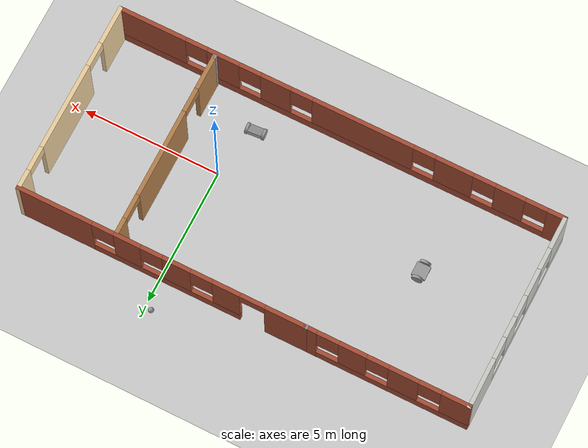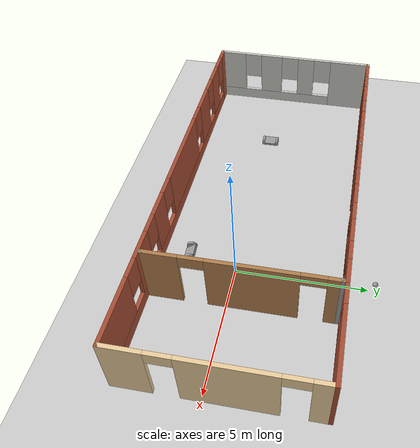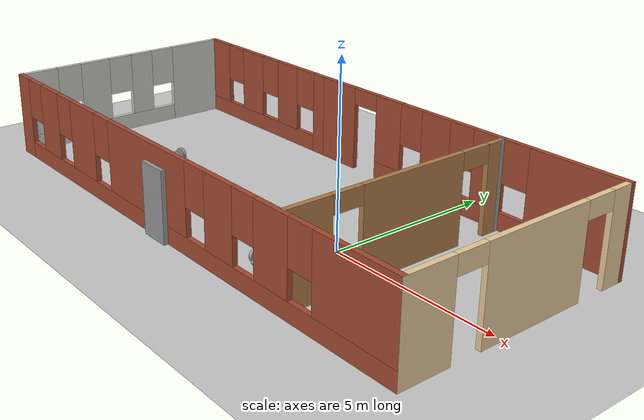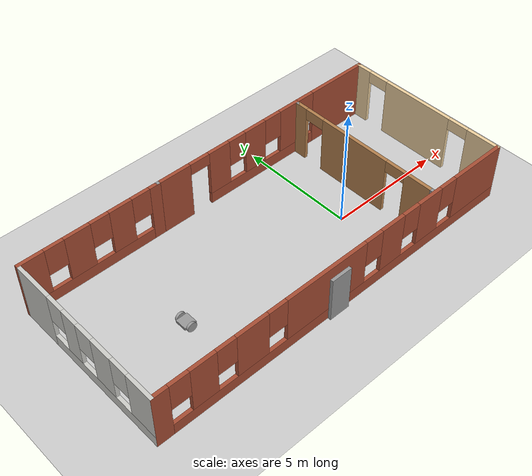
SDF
<sdf version="1.6">
 <world name="default">
  <plugin name="welcome" filename="libwelcome.so"/>
  <light name="sun" type="directional">
   <pose>0 0 10 0 -0 0</pose>
   <diffuse>0.8 0.8 0.8 1</diffuse>
   <specular>0.2 0.2 0.2 1</specular>
   <attenuation>
    <range>1000</range>
    <constant>0.9</constant>
    <linear>0.01</linear>
    <quadratic>0.001</quadratic>
   </attenuation>
   <direction>-0.5 0.1 -0.9</direction>
  </light>
  <model name="ground_plane">
   <static>1</static>
   <link name="link">
    <collision name="collision">
     <geometry><plane><normal>0 0 1</normal><size>100 100</size></plane></geometry>
     <surface><friction><ode><mu>100</mu><mu2>50</mu2></ode></friction></surface>
    </collision>
    <visual name="visual">
     <cast_shadows>0</cast_shadows>
     <geometry><plane><normal>0 0 1</normal><size>100 100</size></plane></geometry>
     <material>
      <script><uri>file://media/materials/scripts/gazebo.material</uri><name>Gazebo/Grey</name></script>
     </material>
    </visual>
   </link>
  </model>
  <gravity>0 0 -9.8</gravity>
  <magnetic_field>6e-06 2.3e-05 -4.2e-05</magnetic_field>
  <atmosphere type="adiabatic"/>
  <physics name="default_physics" default="0" type="ode">
   <max_step_size>0.001</max_step_size>
   <real_time_factor>1</real_time_factor>
   <real_time_update_rate>1000</real_time_update_rate>
  </physics>
  <scene><ambient>0.4 0.4 0.4 1</ambient><background>0.7 0.7 0.7 1</background><shadows>1</shadows></scene>
  <spherical_coordinates>
   <surface_model>EARTH_WGS84</surface_model>
   <latitude_deg>0</latitude_deg>
   <longitude_deg>0</longitude_deg>
   <elevation>0</elevation>
   <heading_deg>0</heading_deg>
  </spherical_coordinates>
  <model name="building">
   <pose>-3.0512 0.57394 0 0 -0 0</pose>
   <link name="Door_1">
    <collision name="Door_1_Collision">
     <geometry><box><size>0.9 0.17 2</size></box></geometry>
     <pose>0 0 1 0 -0 0</pose>
    </collision>
    <visual name="Door_1_Visual">
     <pose>0 0 1 0 -0 0</pose>
     <geometry><box><size>0.9 0.17 2</size></box></geometry>
     <material>
      <script><uri>file://media/materials/scripts/gazebo.material</uri><name>Gazebo/Grey</name></script>
     </material>
    </visual>
    <pose>-0.312637 -3.66675 0 0 -0 0</pose>
   </link>
   <link name="Wall_0">
    <pose>-5.25 3.55 0 0 -0 3.14159</pose>
    <visual name="Wall_0_Visual_0">
     <pose>-2.75771 0 1.25 0 -0 0</pose>
     <geometry><box><size>0.484571 0.15 2.5</size></box></geometry>
     <material>
      <script><uri>file://media/materials/scripts/gazebo.material</uri><name>Gazebo/Bricks</name></script>
      <ambient>0.921569 0.807843 0.615686 1</ambient>
     </material>
     <meta><layer>0</layer></meta>
    </visual>
    <collision name="Wall_0_Collision_0">
     <geometry><box><size>0.484571 0.15 2.5</size></box></geometry>
     <pose>-2.75771 0 1.25 0 -0 0</pose>
    </collision>
    <visual name="Wall_0_Visual_1">
     <pose>0.242286 0 0.25 0 -0 0</pose>
     <geometry><box><size>5.51543 0.15 0.5</size></box></geometry>
     <material>
      <script><uri>file://media/materials/scripts/gazebo.material</uri><name>Gazebo/Bricks</name></script>
      <ambient>0.921569 0.807843 0.615686 1</ambient>
     </material>
     <meta><layer>0</layer></meta>
    </visual>
    <collision name="Wall_0_Collision_1">
     <geometry><box><size>5.51543 0.15 0.5</size></box></geometry>
     <pose>0.242286 0 0.25 0 -0 0</pose>
    </collision>
    <visual name="Wall_0_Visual_2">
     <pose>-1.2249 0 1.5 0 -0 0</pose>
     <geometry><box><size>0.981057 0.15 2</size></box></geometry>
     <material>
      <script><uri>file://media/materials/scripts/gazebo.material</uri><name>Gazebo/Bricks</name></script>
      <ambient>0.921569 0.807843 0.615686 1</ambient>
     </material>
     <meta><layer>0</layer></meta>
    </visual>
    <collision name="Wall_0_Collision_2">
     <geometry><box><size>0.981057 0.15 2</size></box></geometry>
     <pose>-1.2249 0 1.5 0 -0 0</pose>
    </collision>
    <visual name="Wall_0_Visual_3">
     <pose>0.602418 0 1.5 0 -0 0</pose>
     <geometry><box><size>1.07358 0.15 2</size></box></geometry>
     <material>
      <script><uri>file://media/materials/scripts/gazebo.material</uri><name>Gazebo/Bricks</name></script>
      <ambient>0.921569 0.807843 0.615686 1</ambient>
     </material>
     <meta><layer>0</layer></meta>
    </visual>
    <collision name="Wall_0_Collision_3">
     <geometry><box><size>1.07358 0.15 2</size></box></geometry>
     <pose>0.602418 0 1.5 0 -0 0</pose>
    </collision>
    <visual name="Wall_0_Visual_4">
     <pose>2.4696 0 1.5 0 -0 0</pose>
     <geometry><box><size>1.06079 0.15 2</size></box></geometry>
     <material>
      <script><uri>file://media/materials/scripts/gazebo.material</uri><name>Gazebo/Bricks</name></script>
      <ambient>0.921569 0.807843 0.615686 1</ambient>
     </material>
     <meta><layer>0</layer></meta>
    </visual>
    <collision name="Wall_0_Collision_4">
     <geometry><box><size>1.06079 0.15 2</size></box></geometry>
     <pose>2.4696 0 1.5 0 -0 0</pose>
    </collision>
    <visual name="Wall_0_Visual_5">
     <pose>-2.11543 0 1.9 0 -0 0</pose>
     <geometry><box><size>0.8 0.15 1.2</size></box></geometry>
     <material>
      <script><uri>file://media/materials/scripts/gazebo.material</uri><name>Gazebo/Bricks</name></script>
      <ambient>0.921569 0.807843 0.615686 1</ambient>
     </material>
     <meta><layer>0</layer></meta>
    </visual>
    <collision name="Wall_0_Collision_5">
     <geometry><box><size>0.8 0.15 1.2</size></box></geometry>
     <pose>-2.11543 0 1.9 0 -0 0</pose>
    </collision>
    <visual name="Wall_0_Visual_6">
     <pose>-0.334372 0 1.9 0 -0 0</pose>
     <geometry><box><size>0.8 0.15 1.2</size></box></geometry>
     <material>
      <script><uri>file://media/materials/scripts/gazebo.material</uri><name>Gazebo/Bricks</name></script>
      <ambient>0.921569 0.807843 0.615686 1</ambient>
     </material>
     <meta><layer>0</layer></meta>
    </visual>
    <collision name="Wall_0_Collision_6">
     <geometry><box><size>0.8 0.15 1.2</size></box></geometry>
     <pose>-0.334372 0 1.9 0 -0 0</pose>
    </collision>
    <visual name="Wall_0_Visual_7">
     <pose>1.53921 0 1.9 0 -0 0</pose>
     <geometry><box><size>0.8 0.15 1.2</size></box></geometry>
     <material>
      <script><uri>file://media/materials/scripts/gazebo.material</uri><name>Gazebo/Bricks</name></script>
      <ambient>0.921569 0.807843 0.615686 1</ambient>
     </material>
     <meta><layer>0</layer></meta>
    </visual>
    <collision name="Wall_0_Collision_7">
     <geometry><box><size>0.8 0.15 1.2</size></box></geometry>
     <pose>1.53921 0 1.9 0 -0 0</pose>
    </collision>
   </link>
   <link name="Wall_1">
    <pose>-8.175 0 0 0 0 -1.5708</pose>
    <visual name="Wall_1_Visual_0">
     <pose>-2.70036 0 1.25 0 -0 0</pose>
     <geometry><box><size>1.84928 0.15 2.5</size></box></geometry>
     <material>
      <script><uri>file://media/materials/scripts/gazebo.material</uri><name>Gazebo/CeilingTiled</name></script>
      <ambient>0.921569 0.807843 0.615686 1</ambient>
     </material>
     <meta><layer>0</layer></meta>
    </visual>
    <collision name="Wall_1_Collision_0">
     <geometry><box><size>1.84928 0.15 2.5</size></box></geometry>
     <pose>-2.70036 0 1.25 0 -0 0</pose>
    </collision>
    <visual name="Wall_1_Visual_1">
     <pose>0.924639 0 0.25 0 -0 0</pose>
     <geometry><box><size>5.40072 0.15 0.5</size></box></geometry>
     <material>
      <script><uri>file://media/materials/scripts/gazebo.material</uri><name>Gazebo/CeilingTiled</name></script>
      <ambient>0.921569 0.807843 0.615686 1</ambient>
     </material>
     <meta><layer>0</layer></meta>
    </visual>
    <collision name="Wall_1_Collision_1">
     <geometry><box><size>5.40072 0.15 0.5</size></box></geometry>
     <pose>0.924639 0 0.25 0 -0 0</pose>
    </collision>
    <visual name="Wall_1_Visual_2">
     <pose>-0.589282 0 1.5 0 -0 0</pose>
     <geometry><box><size>0.772881 0.15 2</size></box></geometry>
     <material>
      <script><uri>file://media/materials/scripts/gazebo.material</uri><name>Gazebo/CeilingTiled</name></script>
      <ambient>0.921569 0.807843 0.615686 1</ambient>
     </material>
     <meta><layer>0</layer></meta>
    </visual>
    <collision name="Wall_1_Collision_2">
     <geometry><box><size>0.772881 0.15 2</size></box></geometry>
     <pose>-0.589282 0 1.5 0 -0 0</pose>
    </collision>
    <visual name="Wall_1_Visual_3">
     <pose>1.09925 0 1.5 0 -0 0</pose>
     <geometry><box><size>1.00419 0.15 2</size></box></geometry>
     <material>
      <script><uri>file://media/materials/scripts/gazebo.material</uri><name>Gazebo/CeilingTiled</name></script>
      <ambient>0.921569 0.807843 0.615686 1</ambient>
     </material>
     <meta><layer>0</layer></meta>
    </visual>
    <collision name="Wall_1_Collision_3">
     <geometry><box><size>1.00419 0.15 2</size></box></geometry>
     <pose>1.09925 0 1.5 0 -0 0</pose>
    </collision>
    <visual name="Wall_1_Visual_4">
     <pose>3.01317 0 1.5 0 -0 0</pose>
     <geometry><box><size>1.22365 0.15 2</size></box></geometry>
     <material>
      <script><uri>file://media/materials/scripts/gazebo.material</uri><name>Gazebo/CeilingTiled</name></script>
      <ambient>0.921569 0.807843 0.615686 1</ambient>
     </material>
     <meta><layer>0</layer></meta>
    </visual>
    <collision name="Wall_1_Collision_4">
     <geometry><box><size>1.22365 0.15 2</size></box></geometry>
     <pose>3.01317 0 1.5 0 -0 0</pose>
    </collision>
    <visual name="Wall_1_Visual_5">
     <pose>-1.37572 0 1.9 0 -0 0</pose>
     <geometry><box><size>0.8 0.15 1.2</size></box></geometry>
     <material>
      <script><uri>file://media/materials/scripts/gazebo.material</uri><name>Gazebo/CeilingTiled</name></script>
      <ambient>0.921569 0.807843 0.615686 1</ambient>
     </material>
     <meta><layer>0</layer></meta>
    </visual>
    <collision name="Wall_1_Collision_5">
     <geometry><box><size>0.8 0.15 1.2</size></box></geometry>
     <pose>-1.37572 0 1.9 0 -0 0</pose>
    </collision>
    <visual name="Wall_1_Visual_6">
     <pose>0.197158 0 1.9 0 -0 0</pose>
     <geometry><box><size>0.8 0.15 1.2</size></box></geometry>
     <material>
      <script><uri>file://media/materials/scripts/gazebo.material</uri><name>Gazebo/CeilingTiled</name></script>
      <ambient>0.921569 0.807843 0.615686 1</ambient>
     </material>
     <meta><layer>0</layer></meta>
    </visual>
    <collision name="Wall_1_Collision_6">
     <geometry><box><size>0.8 0.15 1.2</size></box></geometry>
     <pose>0.197158 0 1.9 0 -0 0</pose>
    </collision>
    <visual name="Wall_1_Visual_7">
     <pose>2.00135 0 1.9 0 -0 0</pose>
     <geometry><box><size>0.8 0.15 1.2</size></box></geometry>
     <material>
      <script><uri>file://media/materials/scripts/gazebo.material</uri><name>Gazebo/CeilingTiled</name></script>
      <ambient>0.921569 0.807843 0.615686 1</ambient>
     </material>
     <meta><layer>0</layer></meta>
    </visual>
    <collision name="Wall_1_Collision_7">
     <geometry><box><size>0.8 0.15 1.2</size></box></geometry>
     <pose>2.00135 0 1.9 0 -0 0</pose>
    </collision>
   </link>
   <link name="Wall_10">
    <pose>4.59105 -0.011889 0 0 -0 1.5708</pose>
    <visual name="Wall_10_Visual_0">
     <pose>-2.81938 0 1.25 0 -0 0</pose>
     <geometry><box><size>1.36124 0.15 2.5</size></box></geometry>
     <material>
      <script><uri>file://media/materials/scripts/gazebo.material</uri><name>Gazebo/Wood</name></script>
      <ambient>1 1 1 1</ambient>
     </material>
     <meta><layer>0</layer></meta>
    </visual>
    <collision name="Wall_10_Collision_0">
     <geometry><box><size>1.36124 0.15 2.5</size></box></geometry>
     <pose>-2.81938 0 1.25 0 -0 0</pose>
    </collision>
    <visual name="Wall_10_Visual_1">
     <pose>0.392996 0 1.25 0 -0 0</pose>
     <geometry><box><size>3.26351 0.15 2.5</size></box></geometry>
     <material>
      <script><uri>file://media/materials/scripts/gazebo.material</uri><name>Gazebo/Wood</name></script>
      <ambient>1 1 1 1</ambient>
     </material>
     <meta><layer>0</layer></meta>
    </visual>
    <collision name="Wall_10_Collision_1">
     <geometry><box><size>3.26351 0.15 2.5</size></box></geometry>
     <pose>0.392996 0 1.25 0 -0 0</pose>
    </collision>
    <visual name="Wall_10_Visual_2">
     <pose>3.21238 0 1.25 0 -0 0</pose>
     <geometry><box><size>0.575249 0.15 2.5</size></box></geometry>
     <material>
      <script><uri>file://media/materials/scripts/gazebo.material</uri><name>Gazebo/Wood</name></script>
      <ambient>1 1 1 1</ambient>
     </material>
     <meta><layer>0</layer></meta>
    </visual>
    <collision name="Wall_10_Collision_2">
     <geometry><box><size>0.575249 0.15 2.5</size></box></geometry>
     <pose>3.21238 0 1.25 0 -0 0</pose>
    </collision>
    <visual name="Wall_10_Visual_3">
     <pose>-1.68876 0 2.25 0 -0 0</pose>
     <geometry><box><size>0.9 0.15 0.5</size></box></geometry>
     <material>
      <script><uri>file://media/materials/scripts/gazebo.material</uri><name>Gazebo/Wood</name></script>
      <ambient>1 1 1 1</ambient>
     </material>
     <meta><layer>0</layer></meta>
    </visual>
    <collision name="Wall_10_Collision_3">
     <geometry><box><size>0.9 0.15 0.5</size></box></geometry>
     <pose>-1.68876 0 2.25 0 -0 0</pose>
    </collision>
    <visual name="Wall_10_Visual_4">
     <pose>2.47475 0 2.25 0 -0 0</pose>
     <geometry><box><size>0.9 0.15 0.5</size></box></geometry>
     <material>
      <script><uri>file://media/materials/scripts/gazebo.material</uri><name>Gazebo/Wood</name></script>
      <ambient>1 1 1 1</ambient>
     </material>
     <meta><layer>0</layer></meta>
    </visual>
    <collision name="Wall_10_Collision_4">
     <geometry><box><size>0.9 0.15 0.5</size></box></geometry>
     <pose>2.47475 0 2.25 0 -0 0</pose>
    </collision>
   </link>
   <link name="Wall_11">
    <collision name="Wall_11_Collision">
     <geometry><box><size>0.15 0.15 2.5</size></box></geometry>
     <pose>0 0 1.25 0 -0 0</pose>
    </collision>
    <visual name="Wall_11_Visual">
     <pose>0 0 1.25 0 -0 0</pose>
     <geometry><box><size>0.15 0.15 2.5</size></box></geometry>
     <material>
      <script><uri>file://media/materials/scripts/gazebo.material</uri><name>Gazebo/Grey</name></script>
      <ambient>1 1 1 1</ambient>
     </material>
     <meta><layer>0</layer></meta>
    </visual>
    <pose>4.59105 3.41311 0 0 -0 0</pose>
   </link>
   <link name="Wall_2">
    <pose>0 -3.55 0 0 -0 0</pose>
    <visual name="Wall_2_Visual_0">
     <pose>-7.90465 0 1.25 0 -0 0</pose>
     <geometry><box><size>0.690703 0.15 2.5</size></box></geometry>
     <material>
      <script><uri>file://media/materials/scripts/gazebo.material</uri><name>Gazebo/Bricks</name></script>
      <ambient>0.921569 0.807843 0.615686 1</ambient>
     </material>
     <meta><layer>0</layer></meta>
    </visual>
    <collision name="Wall_2_Collision_0">
     <geometry><box><size>0.690703 0.15 2.5</size></box></geometry>
     <pose>-7.90465 0 1.25 0 -0 0</pose>
    </collision>
    <visual name="Wall_2_Visual_1">
     <pose>0.345351 0 0.25 0 -0 0</pose>
     <geometry><box><size>15.8093 0.15 0.5</size></box></geometry>
     <material>
      <script><uri>file://media/materials/scripts/gazebo.material</uri><name>Gazebo/Bricks</name></script>
      <ambient>0.921569 0.807843 0.615686 1</ambient>
     </material>
     <meta><layer>0</layer></meta>
    </visual>
    <collision name="Wall_2_Collision_1">
     <geometry><box><size>15.8093 0.15 0.5</size></box></geometry>
     <pose>0.345351 0 0.25 0 -0 0</pose>
    </collision>
    <visual name="Wall_2_Visual_2">
     <pose>-6.22251 0 1.5 0 -0 0</pose>
     <geometry><box><size>1.07358 0.15 2</size></box></geometry>
     <material>
      <script><uri>file://media/materials/scripts/gazebo.material</uri><name>Gazebo/Bricks</name></script>
      <ambient>0.921569 0.807843 0.615686 1</ambient>
     </material>
     <meta><layer>0</layer></meta>
    </visual>
    <collision name="Wall_2_Collision_2">
     <geometry><box><size>1.07358 0.15 2</size></box></geometry>
     <pose>-6.22251 0 1.5 0 -0 0</pose>
    </collision>
    <visual name="Wall_2_Visual_3">
     <pose>-4.19858 0 1.5 0 -0 0</pose>
     <geometry><box><size>1.37428 0.15 2</size></box></geometry>
     <material>
      <script><uri>file://media/materials/scripts/gazebo.material</uri><name>Gazebo/Bricks</name></script>
      <ambient>0.921569 0.807843 0.615686 1</ambient>
     </material>
     <meta><layer>0</layer></meta>
    </visual>
    <collision name="Wall_2_Collision_3">
     <geometry><box><size>1.37428 0.15 2</size></box></geometry>
     <pose>-4.19858 0 1.5 0 -0 0</pose>
    </collision>
    <visual name="Wall_2_Visual_4">
     <pose>-0.856206 0 1.5 0 -0 0</pose>
     <geometry><box><size>3.71047 0.15 2</size></box></geometry>
     <material>
      <script><uri>file://media/materials/scripts/gazebo.material</uri><name>Gazebo/Bricks</name></script>
      <ambient>0.921569 0.807843 0.615686 1</ambient>
     </material>
     <meta><layer>0</layer></meta>
    </visual>
    <collision name="Wall_2_Collision_4">
     <geometry><box><size>3.71047 0.15 2</size></box></geometry>
     <pose>-0.856206 0 1.5 0 -0 0</pose>
    </collision>
    <visual name="Wall_2_Visual_5">
     <pose>2.35895 0 1.5 0 -0 0</pose>
     <geometry><box><size>1.11984 0.15 2</size></box></geometry>
     <material>
      <script><uri>file://media/materials/scripts/gazebo.material</uri><name>Gazebo/Bricks</name></script>
      <ambient>0.921569 0.807843 0.615686 1</ambient>
     </material>
     <meta><layer>0</layer></meta>
    </visual>
    <collision name="Wall_2_Collision_5">
     <geometry><box><size>1.11984 0.15 2</size></box></geometry>
     <pose>2.35895 0 1.5 0 -0 0</pose>
    </collision>
    <visual name="Wall_2_Visual_6">
     <pose>4.31348 0 1.5 0 -0 0</pose>
     <geometry><box><size>1.18923 0.15 2</size></box></geometry>
     <material>
      <script><uri>file://media/materials/scripts/gazebo.material</uri><name>Gazebo/Bricks</name></script>
      <ambient>0.921569 0.807843 0.615686 1</ambient>
     </material>
     <meta><layer>0</layer></meta>
    </visual>
    <collision name="Wall_2_Collision_6">
     <geometry><box><size>1.18923 0.15 2</size></box></geometry>
     <pose>4.31348 0 1.5 0 -0 0</pose>
    </collision>
    <visual name="Wall_2_Visual_7">
     <pose>6.97905 0 1.5 0 -0 0</pose>
     <geometry><box><size>2.5419 0.15 2</size></box></geometry>
     <material>
      <script><uri>file://media/materials/scripts/gazebo.material</uri><name>Gazebo/Bricks</name></script>
      <ambient>0.921569 0.807843 0.615686 1</ambient>
     </material>
     <meta><layer>0</layer></meta>
    </visual>
    <collision name="Wall_2_Collision_7">
     <geometry><box><size>2.5419 0.15 2</size></box></geometry>
     <pose>6.97905 0 1.5 0 -0 0</pose>
    </collision>
    <visual name="Wall_2_Visual_8">
     <pose>-7.1593 0 1.9 0 -0 0</pose>
     <geometry><box><size>0.8 0.15 1.2</size></box></geometry>
     <material>
      <script><uri>file://media/materials/scripts/gazebo.material</uri><name>Gazebo/Bricks</name></script>
      <ambient>0.921569 0.807843 0.615686 1</ambient>
     </material>
     <meta><layer>0</layer></meta>
    </visual>
    <collision name="Wall_2_Collision_8">
     <geometry><box><size>0.8 0.15 1.2</size></box></geometry>
     <pose>-7.1593 0 1.9 0 -0 0</pose>
    </collision>
    <visual name="Wall_2_Visual_9">
     <pose>-5.28572 0 1.9 0 -0 0</pose>
     <geometry><box><size>0.8 0.15 1.2</size></box></geometry>
     <material>
      <script><uri>file://media/materials/scripts/gazebo.material</uri><name>Gazebo/Bricks</name></script>
      <ambient>0.921569 0.807843 0.615686 1</ambient>
     </material>
     <meta><layer>0</layer></meta>
    </visual>
    <collision name="Wall_2_Collision_9">
     <geometry><box><size>0.8 0.15 1.2</size></box></geometry>
     <pose>-5.28572 0 1.9 0 -0 0</pose>
    </collision>
    <visual name="Wall_2_Visual_10">
     <pose>-3.11144 0 1.9 0 -0 0</pose>
     <geometry><box><size>0.8 0.15 1.2</size></box></geometry>
     <material>
      <script><uri>file://media/materials/scripts/gazebo.material</uri><name>Gazebo/Bricks</name></script>
      <ambient>0.921569 0.807843 0.615686 1</ambient>
     </material>
     <meta><layer>0</layer></meta>
    </visual>
    <collision name="Wall_2_Collision_10">
     <geometry><box><size>0.8 0.15 1.2</size></box></geometry>
     <pose>-3.11144 0 1.9 0 -0 0</pose>
    </collision>
    <visual name="Wall_2_Visual_11">
     <pose>1.39903 0 1.9 0 -0 0</pose>
     <geometry><box><size>0.8 0.15 1.2</size></box></geometry>
     <material>
      <script><uri>file://media/materials/scripts/gazebo.material</uri><name>Gazebo/Bricks</name></script>
      <ambient>0.921569 0.807843 0.615686 1</ambient>
     </material>
     <meta><layer>0</layer></meta>
    </visual>
    <collision name="Wall_2_Collision_11">
     <geometry><box><size>0.8 0.15 1.2</size></box></geometry>
     <pose>1.39903 0 1.9 0 -0 0</pose>
    </collision>
    <visual name="Wall_2_Visual_12">
     <pose>3.31887 0 1.9 0 -0 0</pose>
     <geometry><box><size>0.8 0.15 1.2</size></box></geometry>
     <material>
      <script><uri>file://media/materials/scripts/gazebo.material</uri><name>Gazebo/Bricks</name></script>
      <ambient>0.921569 0.807843 0.615686 1</ambient>
     </material>
     <meta><layer>0</layer></meta>
    </visual>
    <collision name="Wall_2_Collision_12">
     <geometry><box><size>0.8 0.15 1.2</size></box></geometry>
     <pose>3.31887 0 1.9 0 -0 0</pose>
    </collision>
    <visual name="Wall_2_Visual_13">
     <pose>5.3081 0 1.9 0 -0 0</pose>
     <geometry><box><size>0.8 0.15 1.2</size></box></geometry>
     <material>
      <script><uri>file://media/materials/scripts/gazebo.material</uri><name>Gazebo/Bricks</name></script>
      <ambient>0.921569 0.807843 0.615686 1</ambient>
     </material>
     <meta><layer>0</layer></meta>
    </visual>
    <collision name="Wall_2_Collision_13">
     <geometry><box><size>0.8 0.15 1.2</size></box></geometry>
     <pose>5.3081 0 1.9 0 -0 0</pose>
    </collision>
   </link>
   <link name="Wall_3">
    <pose>8.175 0 0 0 -0 1.5708</pose>
    <visual name="Wall_3_Visual_0">
     <pose>-2.88782 0 1.25 0 -0 0</pose>
     <geometry><box><size>1.47435 0.15 2.5</size></box></geometry>
     <material>
      <script><uri>file://media/materials/scripts/gazebo.material</uri><name>Gazebo/Grey</name></script>
      <ambient>0.921569 0.807843 0.615686 1</ambient>
     </material>
     <meta><layer>0</layer></meta>
    </visual>
    <collision name="Wall_3_Collision_0">
     <geometry><box><size>1.47435 0.15 2.5</size></box></geometry>
     <pose>-2.88782 0 1.25 0 -0 0</pose>
    </collision>
    <visual name="Wall_3_Visual_1">
     <pose>0.357976 0 1.25 0 -0 0</pose>
     <geometry><box><size>3.21725 0.15 2.5</size></box></geometry>
     <material>
      <script><uri>file://media/materials/scripts/gazebo.material</uri><name>Gazebo/Grey</name></script>
      <ambient>0.921569 0.807843 0.615686 1</ambient>
     </material>
     <meta><layer>0</layer></meta>
    </visual>
    <collision name="Wall_3_Collision_1">
     <geometry><box><size>3.21725 0.15 2.5</size></box></geometry>
     <pose>0.357976 0 1.25 0 -0 0</pose>
    </collision>
    <visual name="Wall_3_Visual_2">
     <pose>3.2458 0 1.25 0 -0 0</pose>
     <geometry><box><size>0.7584 0.15 2.5</size></box></geometry>
     <material>
      <script><uri>file://media/materials/scripts/gazebo.material</uri><name>Gazebo/Grey</name></script>
      <ambient>0.921569 0.807843 0.615686 1</ambient>
     </material>
     <meta><layer>0</layer></meta>
    </visual>
    <collision name="Wall_3_Collision_2">
     <geometry><box><size>0.7584 0.15 2.5</size></box></geometry>
     <pose>3.2458 0 1.25 0 -0 0</pose>
    </collision>
    <visual name="Wall_3_Visual_3">
     <pose>-1.70065 0 2.25 0 -0 0</pose>
     <geometry><box><size>0.9 0.15 0.5</size></box></geometry>
     <material>
      <script><uri>file://media/materials/scripts/gazebo.material</uri><name>Gazebo/Grey</name></script>
      <ambient>0.921569 0.807843 0.615686 1</ambient>
     </material>
     <meta><layer>0</layer></meta>
    </visual>
    <collision name="Wall_3_Collision_3">
     <geometry><box><size>0.9 0.15 0.5</size></box></geometry>
     <pose>-1.70065 0 2.25 0 -0 0</pose>
    </collision>
    <visual name="Wall_3_Visual_4">
     <pose>2.4166 0 2.25 0 -0 0</pose>
     <geometry><box><size>0.9 0.15 0.5</size></box></geometry>
     <material>
      <script><uri>file://media/materials/scripts/gazebo.material</uri><name>Gazebo/Grey</name></script>
      <ambient>0.921569 0.807843 0.615686 1</ambient>
     </material>
     <meta><layer>0</layer></meta>
    </visual>
    <collision name="Wall_3_Collision_4">
     <geometry><box><size>0.9 0.15 0.5</size></box></geometry>
     <pose>2.4166 0 2.25 0 -0 0</pose>
    </collision>
   </link>
   <link name="Wall_4">
    <pose>2.925 3.55 0 0 -0 3.14159</pose>
    <visual name="Wall_4_Visual_0">
     <pose>-3.92683 0 1.25 0 -0 0</pose>
     <geometry><box><size>2.79634 0.15 2.5</size></box></geometry>
     <material>
      <script><uri>file://media/materials/scripts/gazebo.material</uri><name>Gazebo/Bricks</name></script>
      <ambient>0.921569 0.807843 0.615686 1</ambient>
     </material>
     <meta><layer>0</layer></meta>
    </visual>
    <collision name="Wall_4_Collision_0">
     <geometry><box><size>2.79634 0.15 2.5</size></box></geometry>
     <pose>-3.92683 0 1.25 0 -0 0</pose>
    </collision>
    <visual name="Wall_4_Visual_1">
     <pose>4.55258 0 1.25 0 -0 0</pose>
     <geometry><box><size>1.54484 0.15 2.5</size></box></geometry>
     <material>
      <script><uri>file://media/materials/scripts/gazebo.material</uri><name>Gazebo/Bricks</name></script>
      <ambient>0.921569 0.807843 0.615686 1</ambient>
     </material>
     <meta><layer>0</layer></meta>
    </visual>
    <collision name="Wall_4_Collision_1">
     <geometry><box><size>1.54484 0.15 2.5</size></box></geometry>
     <pose>4.55258 0 1.25 0 -0 0</pose>
    </collision>
    <visual name="Wall_4_Visual_2">
     <pose>0.175748 0 0.25 0 -0 0</pose>
     <geometry><box><size>5.40882 0.15 0.5</size></box></geometry>
     <material>
      <script><uri>file://media/materials/scripts/gazebo.material</uri><name>Gazebo/Bricks</name></script>
      <ambient>0.921569 0.807843 0.615686 1</ambient>
     </material>
     <meta><layer>0</layer></meta>
    </visual>
    <collision name="Wall_4_Collision_2">
     <geometry><box><size>5.40882 0.15 0.5</size></box></geometry>
     <pose>0.175748 0 0.25 0 -0 0</pose>
    </collision>
    <visual name="Wall_4_Visual_3">
     <pose>-1.23813 0 1.5 0 -0 0</pose>
     <geometry><box><size>0.981057 0.15 2</size></box></geometry>
     <material>
      <script><uri>file://media/materials/scripts/gazebo.material</uri><name>Gazebo/Bricks</name></script>
      <ambient>0.921569 0.807843 0.615686 1</ambient>
     </material>
     <meta><layer>0</layer></meta>
    </visual>
    <collision name="Wall_4_Collision_3">
     <geometry><box><size>0.981057 0.15 2</size></box></geometry>
     <pose>-1.23813 0 1.5 0 -0 0</pose>
    </collision>
    <visual name="Wall_4_Visual_4">
     <pose>0.566052 0 1.5 0 -0 0</pose>
     <geometry><box><size>1.02732 0.15 2</size></box></geometry>
     <material>
      <script><uri>file://media/materials/scripts/gazebo.material</uri><name>Gazebo/Bricks</name></script>
      <ambient>0.921569 0.807843 0.615686 1</ambient>
     </material>
     <meta><layer>0</layer></meta>
    </visual>
    <collision name="Wall_4_Collision_4">
     <geometry><box><size>1.02732 0.15 2</size></box></geometry>
     <pose>0.566052 0 1.5 0 -0 0</pose>
    </collision>
    <visual name="Wall_4_Visual_5">
     <pose>2.37994 0 1.5 0 -0 0</pose>
     <geometry><box><size>1.00045 0.15 2</size></box></geometry>
     <material>
      <script><uri>file://media/materials/scripts/gazebo.material</uri><name>Gazebo/Bricks</name></script>
      <ambient>0.921569 0.807843 0.615686 1</ambient>
     </material>
     <meta><layer>0</layer></meta>
    </visual>
    <collision name="Wall_4_Collision_5">
     <geometry><box><size>1.00045 0.15 2</size></box></geometry>
     <pose>2.37994 0 1.5 0 -0 0</pose>
    </collision>
    <visual name="Wall_4_Visual_6">
     <pose>-2.12866 0 1.9 0 -0 0</pose>
     <geometry><box><size>0.8 0.15 1.2</size></box></geometry>
     <material>
      <script><uri>file://media/materials/scripts/gazebo.material</uri><name>Gazebo/Bricks</name></script>
      <ambient>0.921569 0.807843 0.615686 1</ambient>
     </material>
     <meta><layer>0</layer></meta>
    </visual>
    <collision name="Wall_4_Collision_6">
     <geometry><box><size>0.8 0.15 1.2</size></box></geometry>
     <pose>-2.12866 0 1.9 0 -0 0</pose>
    </collision>
    <visual name="Wall_4_Visual_7">
     <pose>-0.347607 0 1.9 0 -0 0</pose>
     <geometry><box><size>0.8 0.15 1.2</size></box></geometry>
     <material>
      <script><uri>file://media/materials/scripts/gazebo.material</uri><name>Gazebo/Bricks</name></script>
      <ambient>0.921569 0.807843 0.615686 1</ambient>
     </material>
     <meta><layer>0</layer></meta>
    </visual>
    <collision name="Wall_4_Collision_7">
     <geometry><box><size>0.8 0.15 1.2</size></box></geometry>
     <pose>-0.347607 0 1.9 0 -0 0</pose>
    </collision>
    <visual name="Wall_4_Visual_8">
     <pose>1.47971 0 1.9 0 -0 0</pose>
     <geometry><box><size>0.8 0.15 1.2</size></box></geometry>
     <material>
      <script><uri>file://media/materials/scripts/gazebo.material</uri><name>Gazebo/Bricks</name></script>
      <ambient>0.921569 0.807843 0.615686 1</ambient>
     </material>
     <meta><layer>0</layer></meta>
    </visual>
    <collision name="Wall_4_Collision_8">
     <geometry><box><size>0.8 0.15 1.2</size></box></geometry>
     <pose>1.47971 0 1.9 0 -0 0</pose>
    </collision>
    <visual name="Wall_4_Visual_9">
     <pose>3.33016 0 2.25 0 -0 0</pose>
     <geometry><box><size>0.9 0.15 0.5</size></box></geometry>
     <material>
      <script><uri>file://media/materials/scripts/gazebo.material</uri><name>Gazebo/Bricks</name></script>
      <ambient>0.921569 0.807843 0.615686 1</ambient>
     </material>
     <meta><layer>0</layer></meta>
    </visual>
    <collision name="Wall_4_Collision_9">
     <geometry><box><size>0.9 0.15 0.5</size></box></geometry>
     <pose>3.33016 0 2.25 0 -0 0</pose>
    </collision>
   </link>
   <link name="Wall_5">
    <collision name="Wall_5_Collision">
     <geometry><box><size>0.15 0.15 2.5</size></box></geometry>
     <pose>0 0 1.25 0 -0 0</pose>
    </collision>
    <visual name="Wall_5_Visual">
     <pose>0 0 1.25 0 -0 0</pose>
     <geometry><box><size>0.15 0.15 2.5</size></box></geometry>
     <material>
      <script><uri>file://media/materials/scripts/gazebo.material</uri><name>Gazebo/Grey</name></script>
      <ambient>1 1 1 1</ambient>
     </material>
     <meta><layer>0</layer></meta>
    </visual>
    <pose>-2.325 3.55 0 0 -0 0</pose>
   </link>
   <link name="Wall_8">
    <collision name="Wall_8_Collision">
     <geometry><box><size>0.15 0.15 2.5</size></box></geometry>
     <pose>0 0 1.25 0 -0 0</pose>
    </collision>
    <visual name="Wall_8_Visual">
     <pose>0 0 1.25 0 -0 0</pose>
     <geometry><box><size>0.15 0.15 2.5</size></box></geometry>
     <material>
      <script><uri>file://media/materials/scripts/gazebo.material</uri><name>Gazebo/Grey</name></script>
      <ambient>1 1 1 1</ambient>
     </material>
     <meta><layer>0</layer></meta>
    </visual>
    <pose>4.59105 -3.43689 0 0 -0 0</pose>
   </link>
   <static>1</static>
  </model>
  <model name="robot">
   <link name="link_0">
    <inertial>
     <mass>1</mass>
     <inertia>
      <ixx>0.166667</ixx>
      <ixy>0</ixy>
      <ixz>0</ixz>
      <iyy>0.166667</iyy>
      <iyz>0</iyz>
      <izz>0.166667</izz>
     </inertia>
    </inertial>
    <visual name="visual">
     <geometry><box><size>0.5 0.5 0.1</size></box></geometry>
     <material>
      <lighting>1</lighting>
      <script><uri>file://media/materials/scripts/gazebo.material</uri><name>Gazebo/Grey</name></script>
      <shader type="pixel"><normal_map>__default__</normal_map></shader>
      <ambient>0.3 0.3 0.3 1</ambient>
      <diffuse>0.7 0.7 0.7 1</diffuse>
      <specular>0.01 0.01 0.01 1</specular>
      <emissive>0 0 0 1</emissive>
     </material>
    </visual>
    <collision name="collision">
     <geometry><box><size>0.5 0.5 0.1</size></box></geometry>
     <surface>
      <friction>
       <ode><mu>1</mu><mu2>1</mu2><fdir1>0 0 0</fdir1><slip1>0</slip1><slip2>0</slip2></ode>
       <torsional>
        <coefficient>1</coefficient>
        <patch_radius>0</patch_radius>
        <surface_radius>0</surface_radius>
        <use_patch_radius>1</use_patch_radius>
        <ode><slip>0</slip></ode>
       </torsional>
      </friction>
      <bounce><restitution_coefficient>0</restitution_coefficient><threshold>1e+06</threshold></bounce>
      <contact>
       <collide_without_contact>0</collide_without_contact>
       <collide_without_contact_bitmask>1</collide_without_contact_bitmask>
       <collide_bitmask>1</collide_bitmask>
       <ode>
        <soft_cfm>0</soft_cfm>
        <soft_erp>0.2</soft_erp>
        <kp>1e+13</kp>
        <kd>1</kd>
        <max_vel>0.01</max_vel>
        <min_depth>0</min_depth>
       </ode>
       <bullet>
        <split_impulse>1</split_impulse>
        <split_impulse_penetration_threshold>-0.01</split_impulse_penetration_threshold>
        <soft_cfm>0</soft_cfm>
        <soft_erp>0.2</soft_erp>
        <kp>1e+13</kp>
        <kd>1</kd>
       </bullet>
      </contact>
     </surface>
    </collision>
   </link>
   <link name="link_1">
    <pose>0 -0.300019 0 1.5707 -0 0</pose>
    <inertial>
     <mass>1</mass>
     <inertia><ixx>0.145833</ixx><ixy>0</ixy><ixz>0</ixz><iyy>0.145833</iyy><iyz>0</iyz><izz>0.125</izz></inertia>
    </inertial>
    <visual name="visual">
     <geometry><cylinder><radius>0.2</radius><length>0.1</length></cylinder></geometry>
     <material>
      <lighting>1</lighting>
      <script><uri>file://media/materials/scripts/gazebo.material</uri><name>Gazebo/Grey</name></script>
      <shader type="pixel"><normal_map>__default__</normal_map></shader>
      <ambient>0.3 0.3 0.3 1</ambient>
      <diffuse>0.7 0.7 0.7 1</diffuse>
      <specular>0.01 0.01 0.01 1</specular>
      <emissive>0 0 0 1</emissive>
     </material>
    </visual>
    <collision name="collision">
     <geometry><cylinder><radius>0.2</radius><length>0.1</length></cylinder></geometry>
     <surface>
      <friction>
       <ode><mu>1</mu><mu2>1</mu2><fdir1>0 0 0</fdir1><slip1>0</slip1><slip2>0</slip2></ode>
       <torsional>
        <coefficient>1</coefficient>
        <patch_radius>0</patch_radius>
        <surface_radius>0</surface_radius>
        <use_patch_radius>1</use_patch_radius>
        <ode><slip>0</slip></ode>
       </torsional>
      </friction>
      <bounce><restitution_coefficient>0</restitution_coefficient><threshold>1e+06</threshold></bounce>
      <contact>
       <collide_without_contact>0</collide_without_contact>
       <collide_without_contact_bitmask>1</collide_without_contact_bitmask>
       <collide_bitmask>1</collide_bitmask>
       <ode>
        <soft_cfm>0</soft_cfm>
        <soft_erp>0.2</soft_erp>
        <kp>1e+13</kp>
        <kd>1</kd>
        <max_vel>0.01</max_vel>
        <min_depth>0</min_depth>
       </ode>
       <bullet>
        <split_impulse>1</split_impulse>
        <split_impulse_penetration_threshold>-0.01</split_impulse_penetration_threshold>
        <soft_cfm>0</soft_cfm>
        <soft_erp>0.2</soft_erp>
        <kp>1e+13</kp>
        <kd>1</kd>
       </bullet>
      </contact>
     </surface>
    </collision>
   </link>
   <link name="link_1_clone">
    <pose>0 0.300019 0 1.5707 -0 0</pose>
    <inertial>
     <mass>1</mass>
     <inertia><ixx>0.145833</ixx><ixy>0</ixy><ixz>0</ixz><iyy>0.145833</iyy><iyz>0</iyz><izz>0.125</izz></inertia>
    </inertial>
    <visual name="visual">
     <geometry><cylinder><radius>0.2</radius><length>0.1</length></cylinder></geometry>
     <material>
      <lighting>1</lighting>
      <script><uri>file://media/materials/scripts/gazebo.material</uri><name>Gazebo/Grey</name></script>
      <shader type="pixel"><normal_map>__default__</normal_map></shader>
      <ambient>0.3 0.3 0.3 1</ambient>
      <diffuse>0.7 0.7 0.7 1</diffuse>
      <specular>0.01 0.01 0.01 1</specular>
      <emissive>0 0 0 1</emissive>
     </material>
    </visual>
    <collision name="collision">
     <geometry><cylinder><radius>0.2</radius><length>0.1</length></cylinder></geometry>
     <surface>
      <friction>
       <ode><mu>1</mu><mu2>1</mu2><fdir1>0 0 0</fdir1><slip1>0</slip1><slip2>0</slip2></ode>
       <torsional>
        <coefficient>1</coefficient>
        <patch_radius>0</patch_radius>
        <surface_radius>0</surface_radius>
        <use_patch_radius>1</use_patch_radius>
        <ode><slip>0</slip></ode>
       </torsional>
      </friction>
      <bounce><restitution_coefficient>0</restitution_coefficient><threshold>1e+06</threshold></bounce>
      <contact>
       <collide_without_contact>0</collide_without_contact>
       <collide_without_contact_bitmask>1</collide_without_contact_bitmask>
       <collide_bitmask>1</collide_bitmask>
       <ode>
        <soft_cfm>0</soft_cfm>
        <soft_erp>0.2</soft_erp>
        <kp>1e+13</kp>
        <kd>1</kd>
        <max_vel>0.01</max_vel>
        <min_depth>0</min_depth>
       </ode>
       <bullet>
        <split_impulse>1</split_impulse>
        <split_impulse_penetration_threshold>-0.01</split_impulse_penetration_threshold>
        <soft_cfm>0</soft_cfm>
        <soft_erp>0.2</soft_erp>
        <kp>1e+13</kp>
        <kd>1</kd>
       </bullet>
      </contact>
     </surface>
    </collision>
   </link>
   <joint name="link_0_JOINT_1" type="revolute">
    <parent>link_0</parent>
    <child>link_1</child>
    <axis>
     <xyz>1 0 0</xyz>
     <use_parent_model_frame>0</use_parent_model_frame>
     <limit>
      <lower>-1.79769e+308</lower>
      <upper>1.79769e+308</upper>
      <effort>-1</effort>
      <velocity>-1</velocity>
     </limit>
     <dynamics>
      <spring_reference>0</spring_reference>
      <spring_stiffness>0</spring_stiffness>
      <damping>0</damping>
     </dynamics>
    </axis>
    <physics>
     <ode><limit><cfm>0</cfm><erp>0.2</erp></limit><suspension><cfm>0</cfm><erp>0.2</erp></suspension></ode>
    </physics>
   </joint>
   <joint name="link_0_JOINT_2" type="revolute">
    <parent>link_0</parent>
    <child>link_1_clone</child>
    <axis>
     <xyz>1 0 0</xyz>
     <use_parent_model_frame>0</use_parent_model_frame>
     <limit>
      <lower>-1.79769e+308</lower>
      <upper>1.79769e+308</upper>
      <effort>-1</effort>
      <velocity>-1</velocity>
     </limit>
     <dynamics>
      <spring_reference>0</spring_reference>
      <spring_stiffness>0</spring_stiffness>
      <damping>0</damping>
     </dynamics>
    </axis>
    <physics>
     <ode><limit><cfm>0</cfm><erp>0.2</erp></limit><suspension><cfm>0</cfm><erp>0.2</erp></suspension></ode>
    </physics>
   </joint>
   <static>0</static>
   <pose>-0.472244 -1.87951 0.199996 0 0.647565 -1.49951</pose>
  </model>
  <model name="robot_0">
   <link name="link_0">
    <inertial>
     <mass>1</mass>
     <inertia>
      <ixx>0.166667</ixx>
      <ixy>0</ixy>
      <ixz>0</ixz>
      <iyy>0.166667</iyy>
      <iyz>0</iyz>
      <izz>0.166667</izz>
     </inertia>
    </inertial>
    <visual name="visual">
     <geometry><box><size>0.5 0.5 0.1</size></box></geometry>
     <material>
      <lighting>1</lighting>
      <script><uri>file://media/materials/scripts/gazebo.material</uri><name>Gazebo/Grey</name></script>
      <shader type="pixel"><normal_map>__default__</normal_map></shader>
      <ambient>0.3 0.3 0.3 1</ambient>
      <diffuse>0.7 0.7 0.7 1</diffuse>
      <specular>0.01 0.01 0.01 1</specular>
      <emissive>0 0 0 1</emissive>
     </material>
    </visual>
    <collision name="collision">
     <geometry><box><size>0.5 0.5 0.1</size></box></geometry>
     <surface>
      <friction>
       <ode><mu>1</mu><mu2>1</mu2><fdir1>0 0 0</fdir1><slip1>0</slip1><slip2>0</slip2></ode>
       <torsional>
        <coefficient>1</coefficient>
        <patch_radius>0</patch_radius>
        <surface_radius>0</surface_radius>
        <use_patch_radius>1</use_patch_radius>
        <ode><slip>0</slip></ode>
       </torsional>
      </friction>
      <bounce><restitution_coefficient>0</restitution_coefficient><threshold>1e+06</threshold></bounce>
      <contact>
       <collide_without_contact>0</collide_without_contact>
       <collide_without_contact_bitmask>1</collide_without_contact_bitmask>
       <collide_bitmask>1</collide_bitmask>
       <ode>
        <soft_cfm>0</soft_cfm>
        <soft_erp>0.2</soft_erp>
        <kp>1e+13</kp>
        <kd>1</kd>
        <max_vel>0.01</max_vel>
        <min_depth>0</min_depth>
       </ode>
       <bullet>
        <split_impulse>1</split_impulse>
        <split_impulse_penetration_threshold>-0.01</split_impulse_penetration_threshold>
        <soft_cfm>0</soft_cfm>
        <soft_erp>0.2</soft_erp>
        <kp>1e+13</kp>
        <kd>1</kd>
       </bullet>
      </contact>
     </surface>
    </collision>
   </link>
   <link name="link_1">
    <pose>0 -0.300019 0 1.5707 -0 0</pose>
    <inertial>
     <mass>1</mass>
     <inertia><ixx>0.145833</ixx><ixy>0</ixy><ixz>0</ixz><iyy>0.145833</iyy><iyz>0</iyz><izz>0.125</izz></inertia>
    </inertial>
    <visual name="visual">
     <geometry><cylinder><radius>0.2</radius><length>0.1</length></cylinder></geometry>
     <material>
      <lighting>1</lighting>
      <script><uri>file://media/materials/scripts/gazebo.material</uri><name>Gazebo/Grey</name></script>
      <shader type="pixel"><normal_map>__default__</normal_map></shader>
      <ambient>0.3 0.3 0.3 1</ambient>
      <diffuse>0.7 0.7 0.7 1</diffuse>
      <specular>0.01 0.01 0.01 1</specular>
      <emissive>0 0 0 1</emissive>
     </material>
    </visual>
    <collision name="collision">
     <geometry><cylinder><radius>0.2</radius><length>0.1</length></cylinder></geometry>
     <surface>
      <friction>
       <ode><mu>1</mu><mu2>1</mu2><fdir1>0 0 0</fdir1><slip1>0</slip1><slip2>0</slip2></ode>
       <torsional>
        <coefficient>1</coefficient>
        <patch_radius>0</patch_radius>
        <surface_radius>0</surface_radius>
        <use_patch_radius>1</use_patch_radius>
        <ode><slip>0</slip></ode>
       </torsional>
      </friction>
      <bounce><restitution_coefficient>0</restitution_coefficient><threshold>1e+06</threshold></bounce>
      <contact>
       <collide_without_contact>0</collide_without_contact>
       <collide_without_contact_bitmask>1</collide_without_contact_bitmask>
       <collide_bitmask>1</collide_bitmask>
       <ode>
        <soft_cfm>0</soft_cfm>
        <soft_erp>0.2</soft_erp>
        <kp>1e+13</kp>
        <kd>1</kd>
        <max_vel>0.01</max_vel>
        <min_depth>0</min_depth>
       </ode>
       <bullet>
        <split_impulse>1</split_impulse>
        <split_impulse_penetration_threshold>-0.01</split_impulse_penetration_threshold>
        <soft_cfm>0</soft_cfm>
        <soft_erp>0.2</soft_erp>
        <kp>1e+13</kp>
        <kd>1</kd>
       </bullet>
      </contact>
     </surface>
    </collision>
   </link>
   <link name="link_1_clone">
    <pose>0 0.300019 0 1.5707 -0 0</pose>
    <inertial>
     <mass>1</mass>
     <inertia><ixx>0.145833</ixx><ixy>0</ixy><ixz>0</ixz><iyy>0.145833</iyy><iyz>0</iyz><izz>0.125</izz></inertia>
    </inertial>
    <visual name="visual">
     <geometry><cylinder><radius>0.2</radius><length>0.1</length></cylinder></geometry>
     <material>
      <lighting>1</lighting>
      <script><uri>file://media/materials/scripts/gazebo.material</uri><name>Gazebo/Grey</name></script>
      <shader type="pixel"><normal_map>__default__</normal_map></shader>
      <ambient>0.3 0.3 0.3 1</ambient>
      <diffuse>0.7 0.7 0.7 1</diffuse>
      <specular>0.01 0.01 0.01 1</specular>
      <emissive>0 0 0 1</emissive>
     </material>
    </visual>
    <collision name="collision">
     <geometry><cylinder><radius>0.2</radius><length>0.1</length></cylinder></geometry>
     <surface>
      <friction>
       <ode><mu>1</mu><mu2>1</mu2><fdir1>0 0 0</fdir1><slip1>0</slip1><slip2>0</slip2></ode>
       <torsional>
        <coefficient>1</coefficient>
        <patch_radius>0</patch_radius>
        <surface_radius>0</surface_radius>
        <use_patch_radius>1</use_patch_radius>
        <ode><slip>0</slip></ode>
       </torsional>
      </friction>
      <bounce><restitution_coefficient>0</restitution_coefficient><threshold>1e+06</threshold></bounce>
      <contact>
       <collide_without_contact>0</collide_without_contact>
       <collide_without_contact_bitmask>1</collide_without_contact_bitmask>
       <collide_bitmask>1</collide_bitmask>
       <ode>
        <soft_cfm>0</soft_cfm>
        <soft_erp>0.2</soft_erp>
        <kp>1e+13</kp>
        <kd>1</kd>
        <max_vel>0.01</max_vel>
        <min_depth>0</min_depth>
       </ode>
       <bullet>
        <split_impulse>1</split_impulse>
        <split_impulse_penetration_threshold>-0.01</split_impulse_penetration_threshold>
        <soft_cfm>0</soft_cfm>
        <soft_erp>0.2</soft_erp>
        <kp>1e+13</kp>
        <kd>1</kd>
       </bullet>
      </contact>
     </surface>
    </collision>
   </link>
   <joint name="link_0_JOINT_1" type="revolute">
    <parent>link_0</parent>
    <child>link_1</child>
    <axis>
     <xyz>1 0 0</xyz>
     <use_parent_model_frame>0</use_parent_model_frame>
     <limit>
      <lower>-1.79769e+308</lower>
      <upper>1.79769e+308</upper>
      <effort>-1</effort>
      <velocity>-1</velocity>
     </limit>
     <dynamics>
      <spring_reference>0</spring_reference>
      <spring_stiffness>0</spring_stiffness>
      <damping>0</damping>
     </dynamics>
    </axis>
    <physics>
     <ode><limit><cfm>0</cfm><erp>0.2</erp></limit><suspension><cfm>0</cfm><erp>0.2</erp></suspension></ode>
    </physics>
   </joint>
   <joint name="link_0_JOINT_2" type="revolute">
    <parent>link_0</parent>
    <child>link_1_clone</child>
    <axis>
     <xyz>1 0 0</xyz>
     <use_parent_model_frame>0</use_parent_model_frame>
     <limit>
      <lower>-1.79769e+308</lower>
      <upper>1.79769e+308</upper>
      <effort>-1</effort>
      <velocity>-1</velocity>
     </limit>
     <dynamics>
      <spring_reference>0</spring_reference>
      <spring_stiffness>0</spring_stiffness>
      <damping>0</damping>
     </dynamics>
    </axis>
    <physics>
     <ode><limit><cfm>0</cfm><erp>0.2</erp></limit><suspension><cfm>0</cfm><erp>0.2</erp></suspension></ode>
    </physics>
   </joint>
   <static>0</static>
   <pose>-7.59871 0.04437 0.199994 -5e-06 2.1e-05 0</pose>
  </model>
  <model name="my_ball">
   <link name="link_1">
    <inertial>
     <mass>1</mass>
     <inertia><ixx>0.1</ixx><ixy>0</ixy><ixz>0</ixz><iyy>0.1</iyy><iyz>0</iyz><izz>0.1</izz></inertia>
    </inertial>
    <visual name="visual">
     <geometry><sphere><radius>0.1</radius></sphere></geometry>
     <material>
      <lighting>1</lighting>
      <script><uri>file://media/materials/scripts/gazebo.material</uri><name>Gazebo/Grey</name></script>
      <shader type="pixel"><normal_map>__default__</normal_map></shader>
      <ambient>1 1 1 1</ambient>
      <diffuse>1 1 1 1</diffuse>
      <specular>1 1 1 1</specular>
      <emissive>1 1 1 1</emissive>
     </material>
    </visual>
    <collision name="collision">
     <geometry><sphere><radius>0.1</radius></sphere></geometry>
     <surface>
      <friction>
       <ode><mu>1</mu><mu2>1</mu2><fdir1>0 0 0</fdir1><slip1>0</slip1><slip2>0</slip2></ode>
       <torsional>
        <coefficient>1</coefficient>
        <patch_radius>0</patch_radius>
        <surface_radius>0</surface_radius>
        <use_patch_radius>1</use_patch_radius>
        <ode><slip>0</slip></ode>
       </torsional>
      </friction>
      <bounce><restitution_coefficient>0</restitution_coefficient><threshold>1e+06</threshold></bounce>
      <contact>
       <collide_without_contact>0</collide_without_contact>
       <collide_without_contact_bitmask>1</collide_without_contact_bitmask>
       <collide_bitmask>1</collide_bitmask>
       <ode>
        <soft_cfm>0</soft_cfm>
        <soft_erp>0.2</soft_erp>
        <kp>1e+13</kp>
        <kd>1</kd>
        <max_vel>0.01</max_vel>
        <min_depth>0</min_depth>
       </ode>
       <bullet>
        <split_impulse>1</split_impulse>
        <split_impulse_penetration_threshold>-0.01</split_impulse_penetration_threshold>
        <soft_cfm>0</soft_cfm>
        <soft_erp>0.2</soft_erp>
        <kp>1e+13</kp>
        <kd>1</kd>
       </bullet>
      </contact>
     </surface>
    </collision>
   </link>
   <static>0</static>
   <pose>-0.245946 5.25599 0.1 0 -0 0</pose>
  </model>
 </world>
</sdf>
